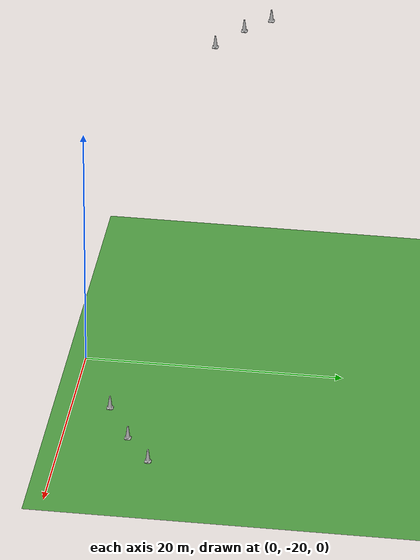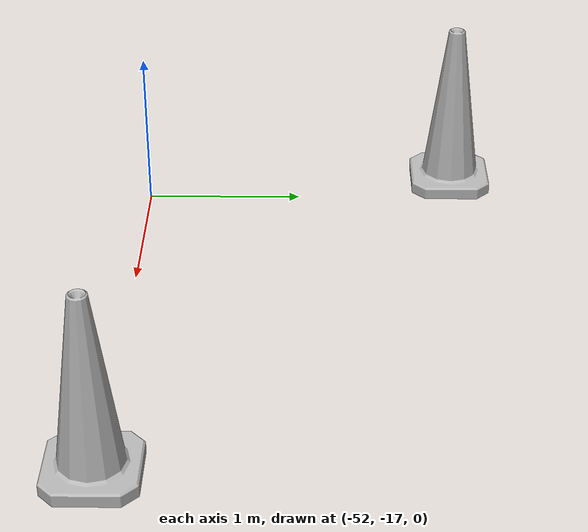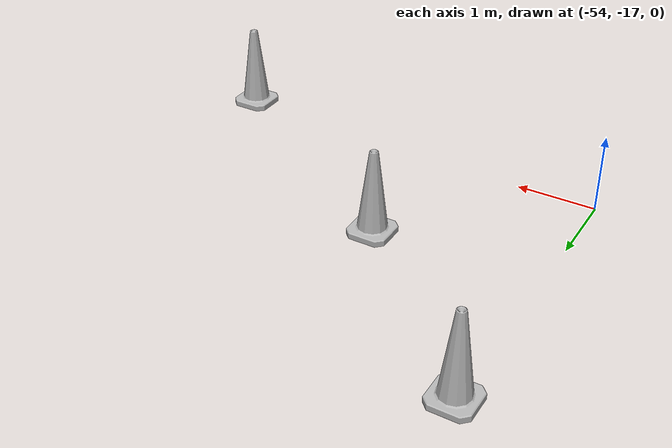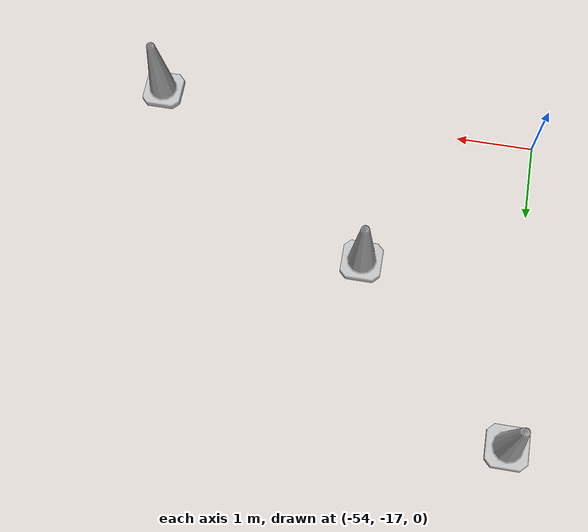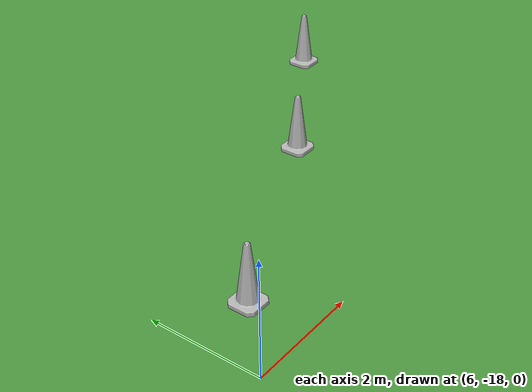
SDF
<sdf version="1.9">
 <world name="highbay_testbed">
  <physics name="1ms" type="ignored">
   <max_step_size>0.001</max_step_size>
   <real_time_factor>1</real_time_factor>
   <real_time_update_rate>1000</real_time_update_rate>
  </physics>
  <plugin name="gz::sim::systems::Physics" filename="gz-sim-physics-system"/>
  <plugin name="gz::sim::systems::UserCommands" filename="gz-sim-user-commands-system"/>
  <plugin name="gz::sim::systems::SceneBroadcaster" filename="gz-sim-scene-broadcaster-system"/>
  <plugin name="gz::sim::systems::Sensors" filename="gz-sim-sensors-system">
   <render_engine>ogre2</render_engine>
  </plugin>
  <plugin name="gz::sim::systems::Contact" filename="gz-sim-contact-system"/>
  <plugin name="gz::sim::systems::Imu" filename="gz-sim-imu-system"/>
  <spherical_coordinates>
   <surface_model>EARTH_WGS84</surface_model>
   <world_frame_orientation>ENU</world_frame_orientation>
   <latitude_deg>40.092857</latitude_deg>
   <longitude_deg>-88.235992</longitude_deg>
   <elevation>0</elevation>
   <heading_deg>0</heading_deg>
  </spherical_coordinates>
  <plugin filename="libignition-gazebo-navsat-system.so" name="ignition::gazebo::systems::NavSat"/>
  <gravity>0 0 -9.8000000000000007</gravity>
  <magnetic_field>5.5644999999999998e-06 2.2875799999999999e-05 -4.2388400000000002e-05</magnetic_field>
  <atmosphere type="adiabatic"/>
  <scene>
   <ambient>0.4 0.4 0.4 1</ambient>
   <background>0.7 0.8 0.9 1</background>
   <shadows>true</shadows>
   <grid>false</grid>
   <origin_visual>false</origin_visual>
   <sky>false</sky>
   <fog>false</fog>
   <anisotropic_filtering>16</anisotropic_filtering>
  </scene>
  <include><uri>model://grass</uri></include>
  <include>
   <uri>model://construction_cone</uri>
   <name>construction_cone_0</name>
   <pose>11 -15 0.14 0 0 0</pose>
  </include>
  <include>
   <uri>model://construction_cone</uri>
   <name>construction_cone_1</name>
   <pose>7 -17 0.14 0 0 0</pose>
  </include>
  <include>
   <uri>model://construction_cone</uri>
   <name>construction_cone_2</name>
   <pose>14 -13 0.14 0 0 0</pose>
  </include>
  <include>
   <uri>model://construction_cone</uri>
   <name>construction_cone_3</name>
   <pose>-49 -17 0.14 0 0 0</pose>
  </include>
  <include>
   <uri>model://construction_cone</uri>
   <name>construction_cone_4</name>
   <pose>-52 -15 0.14 0 0 0</pose>
  </include>
  <include>
   <uri>model://construction_cone</uri>
   <name>construction_cone_5</name>
   <pose>-54 -13 0.14 0 0 0</pose>
  </include>
  <light name="sun" type="directional">
   <pose>0 0 10 0 0 0</pose>
   <intensity>1</intensity>
   <direction>-0.5 0.10000000000000001 -0.90000000000000002</direction>
   <diffuse>0.800000012 0.800000012 0.800000012 1</diffuse>
   <specular>0.200000003 0.200000003 0.200000003 1</specular>
   <attenuation>
    <range>1000</range>
    <linear>0.0099999997764825821</linear>
    <constant>0.89999997615814209</constant>
    <quadratic>0.0010000000474974513</quadratic>
   </attenuation>
   <spot><inner_angle>0</inner_angle><outer_angle>0</outer_angle><falloff>0</falloff></spot>
  </light>
 </world>
</sdf>

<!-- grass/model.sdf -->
<sdf version='1.3'>
  <model name='grass'>
    <static>true</static>
    <link name='link'>
      <collision name='collision'>
        <max_contacts>4</max_contacts>
        <geometry>
          <plane>
            <normal>0 0 1</normal>
            <size>42.85 42.85</size>
          </plane>
        </geometry>
        <surface>
          <friction>
            <ode>
              <mu>1</mu>
              <mu2>0.7</mu2>
            </ode>
          </friction>
        </surface>
      </collision>
      <visual name="visual">
        <cast_shadows>false</cast_shadows>
        <geometry>
          <plane>
            <normal>0 0 1</normal>
            <size>42.85 42.85</size>
          </plane>
        </geometry>
        <material>
          <script>
            <uri>model://grass/materials/scripts</uri>
            <uri>model://grass/materials/textures</uri>
            <name>igvc/grass</name>
          </script>
        </material>
      </visual>
    </link>
  </model>
</sdf>

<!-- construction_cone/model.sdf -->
<sdf version="1.5">
  <model name="Construction Cone">
    <link name="link">
      <collision name="collision">
        <geometry>
          <mesh>
            <scale>10 10 10</scale>
            <uri>file://isr-testbed/construction_cone/meshes/construction_cone.dae</uri>
          </mesh>
        </geometry>
      </collision>
      <visual name="visual">
        <geometry>
          <mesh>
            <scale>10 10 10</scale>
            <uri>file://isr-testbed/construction_cone/meshes/construction_cone.dae</uri>
          </mesh>
        </geometry>
      </visual>
    </link>
  </model>
</sdf>
